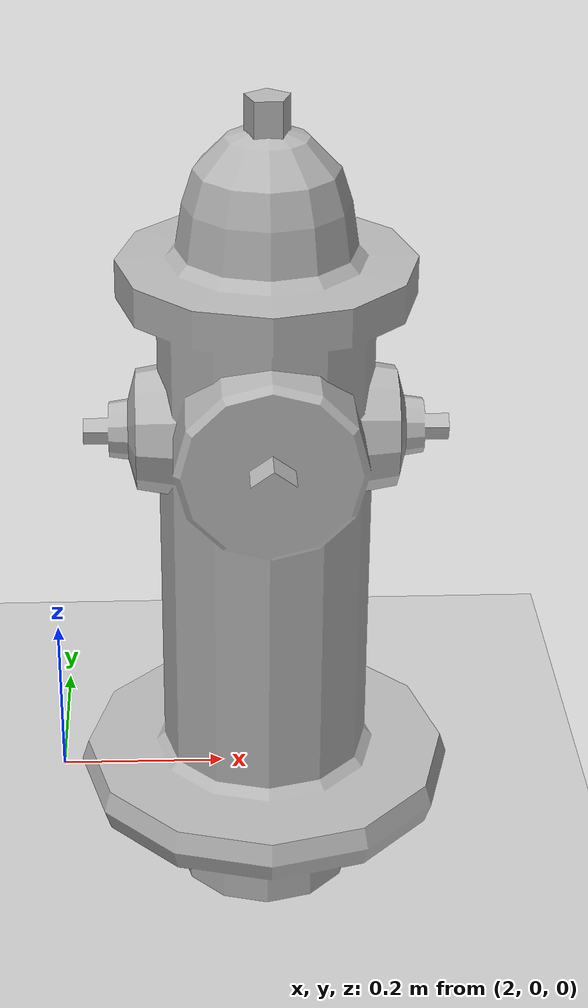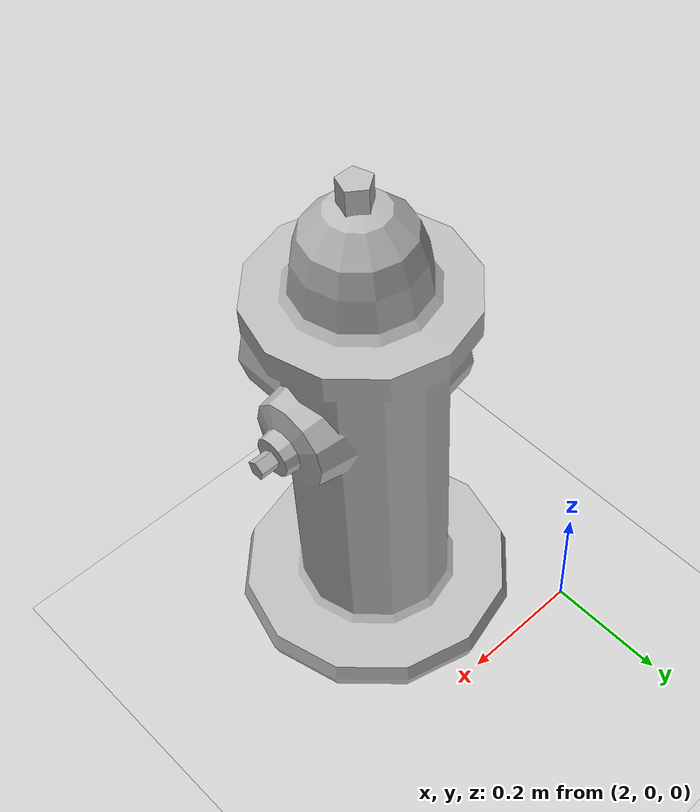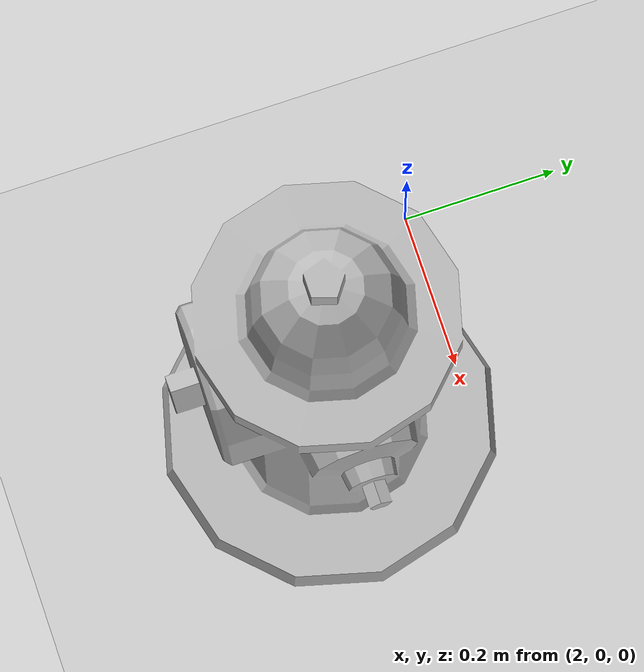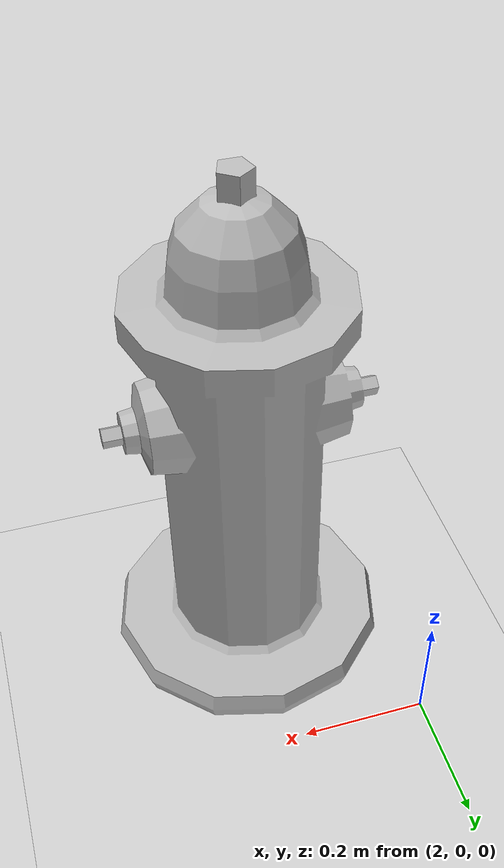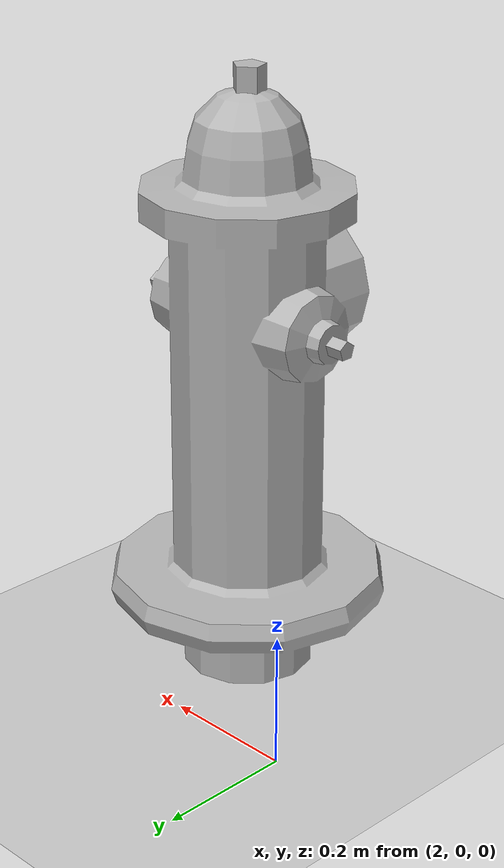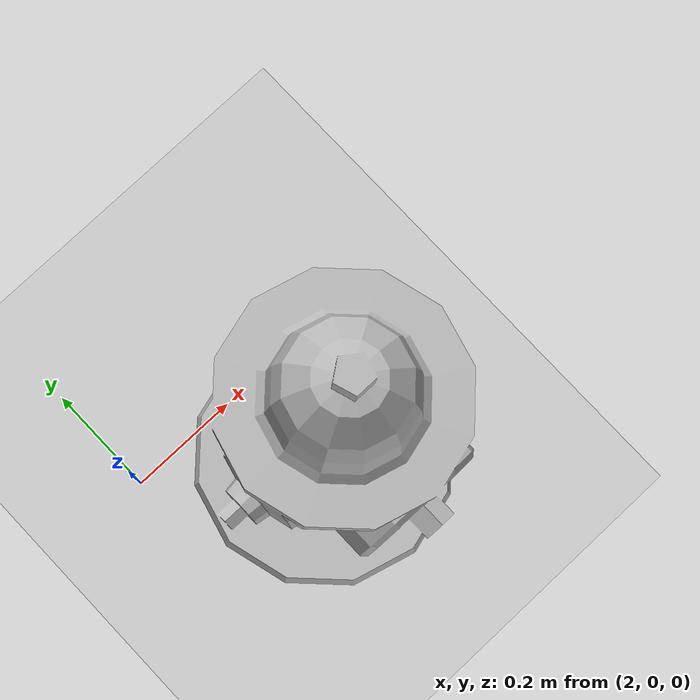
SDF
<sdf version="1.6">
 <world name="default">
  <model name="ground_plane">
   <static>1</static>
   <link name="link">
    <collision name="collision">
     <geometry><plane><normal>0 0 1</normal><size>100 100</size></plane></geometry>
     <surface><friction><ode><mu>100</mu><mu2>100</mu2></ode></friction></surface>
    </collision>
    <visual name="visual">
     <cast_shadows>0</cast_shadows>
     <geometry><plane><normal>0 0 1</normal><size>100 100</size></plane></geometry>
     <material>
      <script><uri>file://media/materials/scripts/gazebo.material</uri><name>Gazebo/Grey</name></script>
     </material>
    </visual>
    <velocity_decay><linear>0</linear><angular>0</angular></velocity_decay>
   </link>
  </model>
  <physics name="default_physics" default="0" type="ode">
   <max_step_size>0.001</max_step_size>
   <real_time_factor>1</real_time_factor>
   <real_time_update_rate>1000</real_time_update_rate>
  </physics>
  <light name="sun" type="directional">
   <pose>0 0 10 0 -0 0</pose>
   <diffuse>0.8 0.8 0.8 1</diffuse>
   <specular>0.1 0.1 0.1 1</specular>
   <attenuation>
    <range>1000</range>
    <constant>0.9</constant>
    <linear>0.01</linear>
    <quadratic>0.001</quadratic>
   </attenuation>
   <direction>-0.5 0.5 -1</direction>
  </light>
  <light name="my_light1" type="directional">
   <pose>0 0 30 0 -0 0</pose>
   <diffuse>0.5 0.5 0.5 1</diffuse>
   <specular>0.9 0.9 0.9 1</specular>
   <attenuation><range>300</range></attenuation>
   <direction>1 1 -1</direction>
   <cast_shadows>0</cast_shadows>
  </light>
  <light name="my_light2" type="directional">
   <pose>0 0 30 0 -0 0</pose>
   <diffuse>0.5 0.5 0.5 1</diffuse>
   <specular>0.9 0.9 0.9 1</specular>
   <attenuation><range>300</range></attenuation>
   <direction>1 -1 -1</direction>
   <cast_shadows>0</cast_shadows>
  </light>
  <light name="my_light3" type="directional">
   <pose>0 0 30 0 -0 0</pose>
   <diffuse>0.5 0.5 0.5 1</diffuse>
   <specular>0.9 0.9 0.9 1</specular>
   <attenuation><range>300</range></attenuation>
   <direction>-1 1 -1</direction>
   <cast_shadows>0</cast_shadows>
  </light>
  <light name="my_light4" type="directional">
   <pose>0 0 30 0 -0 0</pose>
   <diffuse>0.5 0.5 0.5 1</diffuse>
   <specular>0.9 0.9 0.9 1</specular>
   <attenuation><range>300</range></attenuation>
   <direction>-1 -1 -1</direction>
   <cast_shadows>0</cast_shadows>
  </light>
  <gravity>0 0 -9.8</gravity>
  <magnetic_field>6e-06 2.3e-05 -4.2e-05</magnetic_field>
  <atmosphere type="adiabatic"/>
  <scene><ambient>0.4 0.4 0.4 1</ambient><background>0.7 0.7 0.7 1</background><shadows>1</shadows></scene>
  <spherical_coordinates>
   <surface_model>EARTH_WGS84</surface_model>
   <latitude_deg>0</latitude_deg>
   <longitude_deg>0</longitude_deg>
   <elevation>0</elevation>
   <heading_deg>0</heading_deg>
  </spherical_coordinates>
  <model name="fire_hydrant">
   <static>1</static>
   <link name="link">
    <collision name="collision">
     <geometry><mesh><uri>model://fire_hydrant/meshes/fire_hydrant.dae</uri><scale>1 1 1</scale></mesh></geometry>
    </collision>
    <visual name="visual">
     <geometry><mesh><uri>model://fire_hydrant/meshes/fire_hydrant.dae</uri><scale>1 1 1</scale></mesh></geometry>
    </visual>
   </link>
   <pose>2.24539 -0.184306 0 0 -0 0</pose>
  </model>
 </world>
</sdf>
